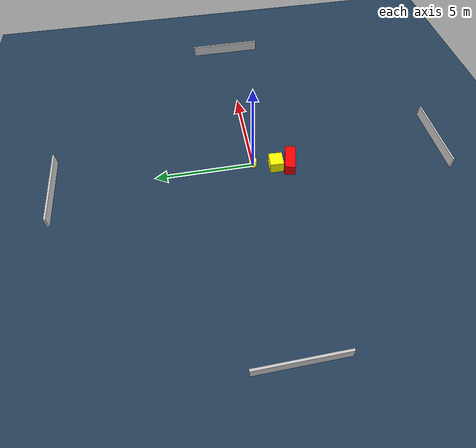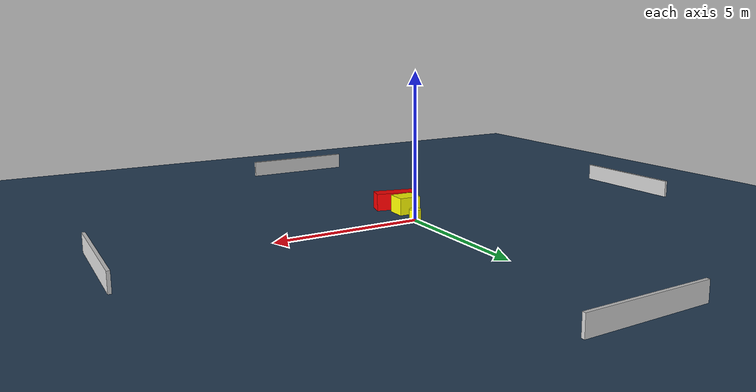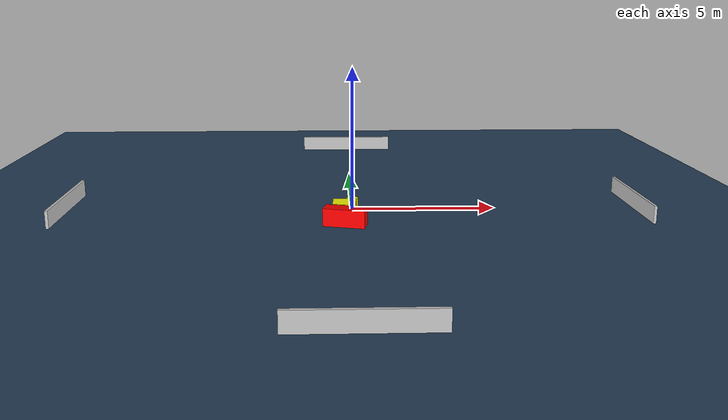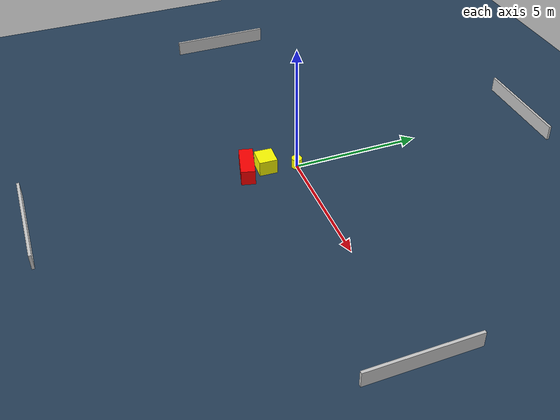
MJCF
<?xml version="1.0" ?>
<mujoco model="generated_environment">
  <option timestep="0.01" integrator="RK4" cone="elliptic"/>
  <default>
    <geom density="1"/>
  </default>
  <asset>
    <texture builtin="gradient" height="3072" name="skybox" rgb1="0.3 0.5 0.7" rgb2="0 0 0" type="skybox" width="512"/>
    <texture builtin="checker" height="300" name="groundplane" rgb1="0.2 0.3 0.4" rgb2="0.1 0.2 0.3" type="2d" width="300"/>
    <material name="groundplane" reflectance="0.2" texrepeat="5 5" texture="groundplane"/>
  </asset>
  <worldbody>
    <light dir="0 0 -1" directional="true" pos="0 0 1.5"/>
    <geom condim="3" friction="0.5 0.005 0.001" material="groundplane" name="floor" pos="0 0 0" size="0 0 0.05" type="plane"/>
    <body name="walls">
      <geom name="wall_1" condim="4" pos="-10.0 0.0 0.3" rgba="0.800000011920929 0.800000011920929 0.800000011920929 1.0" size="0.05 2.0 0.3" type="box"/>
      <geom name="wall_2" condim="4" pos="10.0 0.0 0.3" rgba="0.800000011920929 0.800000011920929 0.800000011920929 1.0" size="0.05 2.0 0.3" type="box"/>
      <geom name="wall_3" condim="4" pos="0.0 -10.0 0.3" rgba="0.800000011920929 0.800000011920929 0.800000011920929 1.0" size="2.0 0.05 0.3" type="box"/>
      <geom name="wall_4" condim="4" pos="0.0 10.0 0.3" rgba="0.800000011920929 0.800000011920929 0.800000011920929 1.0" size="2.0 0.05 0.3" type="box"/>
    </body>
    <body name="robot">
      <joint name="joint_x" type="slide" pos="0 0 0" axis="1 0 0"/>
      <joint name="joint_y" type="slide" pos="0 0 0" axis="0 1 0"/>
      <geom name="robot" type="cylinder" pos="0.0 0.0 0.2" size="0.2 0.2 0.0" mass="5.0" friction="1.0 0.005 0.0001" condim="4" rgba="1.0 1.0 0.0 1.0"/>
    </body>
    <body name="obstacle_1_movable">
      <geom name="obstacle_1_movable" condim="4" pos="-0.30622322234754684 -1.144581385548594 0.3" euler="0 0 87.67633410499424" friction="0.0 0.005 0.001" rgba="1.0 1.0 0.0 1.0" size="0.34951433771205187 0.38755655473579576 0.3" type="box" mass="0.1"/>
      <joint type="free"/>
    </body>
    <body name="obstacle_2_static">
      <geom name="obstacle_2_static" condim="4" pos="-0.29343968553942845 -1.8893591085817496 0.3" euler="0 0 255.72307167990937" friction="0.0 0.005 0.001" rgba="1.0 0.0 0.0 1.0" size="0.26997445175049106 0.7054455740752263 0.3" type="box"/>
    </body>
  </worldbody>
  <actuator>
    <motor name="actuator_x" joint="joint_x" gear="1" ctrlrange="-1 1"/>
    <motor name="actuator_y" joint="joint_y" gear="1" ctrlrange="-1 1"/>
  </actuator>
</mujoco>
